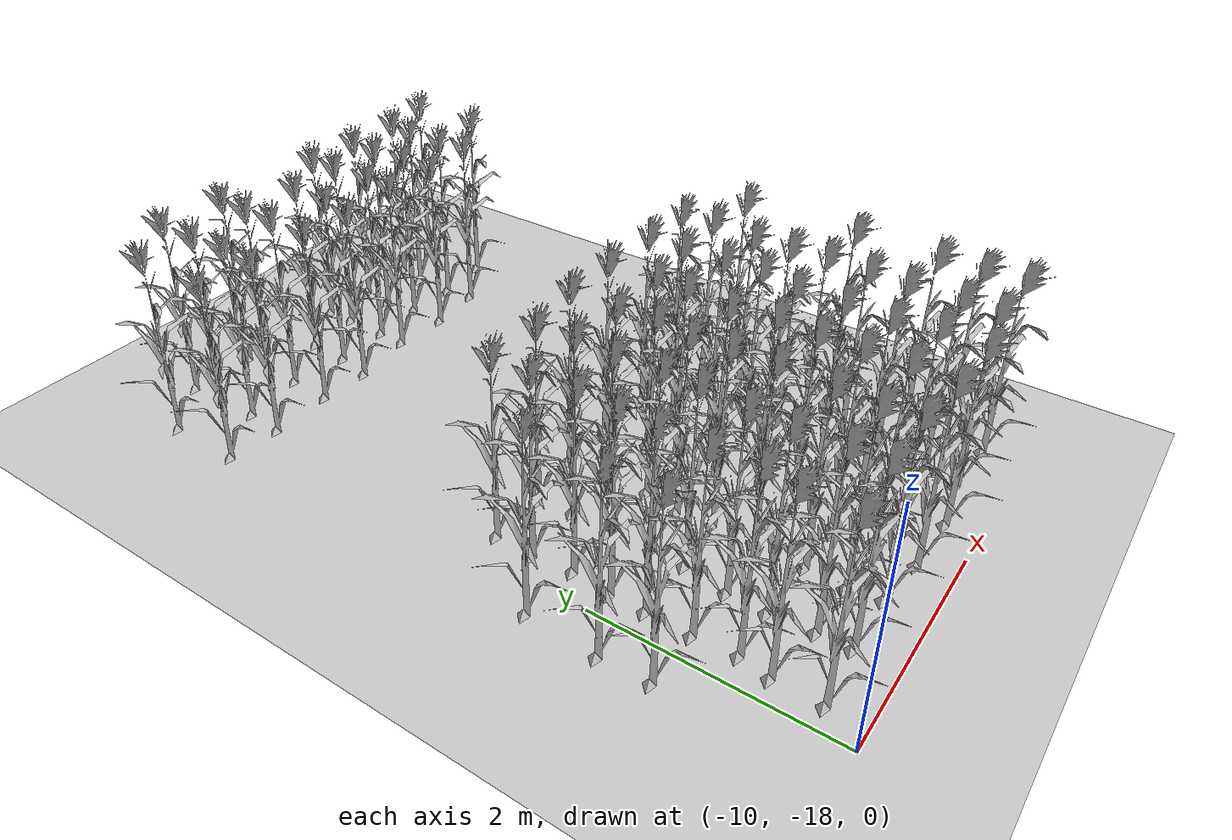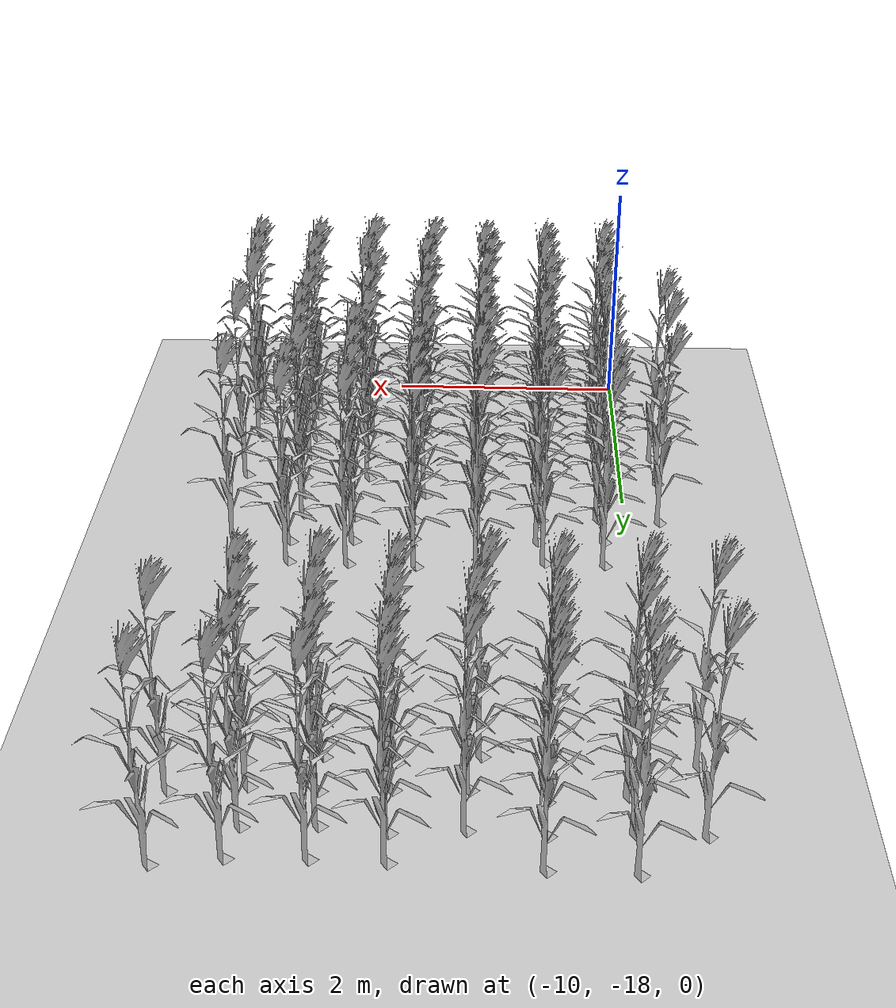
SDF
<sdf version="1.7">
 <world name="farmland_world">
  <model name="ground_plane">
   <static>1</static>
   <link name="link">
    <collision name="collision">
     <geometry><plane><normal>0 0 1</normal><size>40.0 40.0</size></plane></geometry>
     <surface><friction><ode><mu>100</mu><mu2>50</mu2></ode></friction></surface>
    </collision>
    <visual name="visual">
     <cast_shadows>0</cast_shadows>
     <geometry><plane><normal>0 0 1</normal><size>40.0 40.0</size></plane></geometry>
     <material>
      <script><uri>file://media/materials/scripts/gazebo.material</uri><name>Gazebo/Grey</name></script>
     </material>
    </visual>
   </link>
  </model>
  <model name="tree_3_1618">
   <static>1</static>
   <link name="link">
    <collision name="collision">
     <geometry><mesh><uri>model://Corn_low_poly/corn.obj</uri><scale>1 1 1</scale></mesh></geometry>
     <surface><friction><ode><mu>100</mu><mu2>50</mu2></ode></friction></surface>
    </collision>
    <visual name="visual">
     <geometry><mesh><uri>model://Corn_low_poly/corn.obj</uri><scale>1 1 1</scale></mesh></geometry>
    </visual>
   </link>
   <pose>-6.724378462520423 -17.002382384532176 0 0 0 0</pose>
  </model>
  <model name="tree_3_1619">
   <static>1</static>
   <link name="link">
    <collision name="collision">
     <geometry><mesh><uri>model://Corn_low_poly/corn.obj</uri><scale>1 1 1</scale></mesh></geometry>
     <surface><friction><ode><mu>100</mu><mu2>50</mu2></ode></friction></surface>
    </collision>
    <visual name="visual">
     <geometry><mesh><uri>model://Corn_low_poly/corn.obj</uri><scale>1 1 1</scale></mesh></geometry>
    </visual>
   </link>
   <pose>-7.245386113276124 -16.95539571434448 0 0 0 0</pose>
  </model>
  <model name="tree_3_1620">
   <static>1</static>
   <link name="link">
    <collision name="collision">
     <geometry><mesh><uri>model://Corn_low_poly/corn.obj</uri><scale>1 1 1</scale></mesh></geometry>
     <surface><friction><ode><mu>100</mu><mu2>50</mu2></ode></friction></surface>
    </collision>
    <visual name="visual">
     <geometry><mesh><uri>model://Corn_low_poly/corn.obj</uri><scale>1 1 1</scale></mesh></geometry>
    </visual>
   </link>
   <pose>-7.770082953325201 -17.04536111132922 0 0 0 0</pose>
  </model>
  <model name="tree_3_1621">
   <static>1</static>
   <link name="link">
    <collision name="collision">
     <geometry><mesh><uri>model://Corn_low_poly/corn.obj</uri><scale>1 1 1</scale></mesh></geometry>
     <surface><friction><ode><mu>100</mu><mu2>50</mu2></ode></friction></surface>
    </collision>
    <visual name="visual">
     <geometry><mesh><uri>model://Corn_low_poly/corn.obj</uri><scale>1 1 1</scale></mesh></geometry>
    </visual>
   </link>
   <pose>-8.240718700701235 -17.028666195019422 0 0 0 0</pose>
  </model>
  <model name="tree_3_1622">
   <static>1</static>
   <link name="link">
    <collision name="collision">
     <geometry><mesh><uri>model://Corn_low_poly/corn.obj</uri><scale>1 1 1</scale></mesh></geometry>
     <surface><friction><ode><mu>100</mu><mu2>50</mu2></ode></friction></surface>
    </collision>
    <visual name="visual">
     <geometry><mesh><uri>model://Corn_low_poly/corn.obj</uri><scale>1 1 1</scale></mesh></geometry>
    </visual>
   </link>
   <pose>-8.747114153866809 -17.045993525602928 0 0 0 0</pose>
  </model>
  <model name="tree_3_1623">
   <static>1</static>
   <link name="link">
    <collision name="collision">
     <geometry><mesh><uri>model://Corn_low_poly/corn.obj</uri><scale>1 1 1</scale></mesh></geometry>
     <surface><friction><ode><mu>100</mu><mu2>50</mu2></ode></friction></surface>
    </collision>
    <visual name="visual">
     <geometry><mesh><uri>model://Corn_low_poly/corn.obj</uri><scale>1 1 1</scale></mesh></geometry>
    </visual>
   </link>
   <pose>-9.304067438409486 -17.022650232296026 0 0 0 0</pose>
  </model>
  <model name="tree_3_1624">
   <static>1</static>
   <link name="link">
    <collision name="collision">
     <geometry><mesh><uri>model://Corn_low_poly/corn.obj</uri><scale>1 1 1</scale></mesh></geometry>
     <surface><friction><ode><mu>100</mu><mu2>50</mu2></ode></friction></surface>
    </collision>
    <visual name="visual">
     <geometry><mesh><uri>model://Corn_low_poly/corn.obj</uri><scale>1 1 1</scale></mesh></geometry>
    </visual>
   </link>
   <pose>-9.744941497329135 -17.045296760980715 0 0 0 0</pose>
  </model>
  <model name="tree_3_1652">
   <static>1</static>
   <link name="link">
    <collision name="collision">
     <geometry><mesh><uri>model://Corn_low_poly/corn.obj</uri><scale>1 1 1</scale></mesh></geometry>
     <surface><friction><ode><mu>100</mu><mu2>50</mu2></ode></friction></surface>
    </collision>
    <visual name="visual">
     <geometry><mesh><uri>model://Corn_low_poly/corn.obj</uri><scale>1 1 1</scale></mesh></geometry>
    </visual>
   </link>
   <pose>-6.7134934867978036 -17.345716254519786 0 0 0 0</pose>
  </model>
  <model name="tree_3_1653">
   <static>1</static>
   <link name="link">
    <collision name="collision">
     <geometry><mesh><uri>model://Corn_low_poly/corn.obj</uri><scale>1 1 1</scale></mesh></geometry>
     <surface><friction><ode><mu>100</mu><mu2>50</mu2></ode></friction></surface>
    </collision>
    <visual name="visual">
     <geometry><mesh><uri>model://Corn_low_poly/corn.obj</uri><scale>1 1 1</scale></mesh></geometry>
    </visual>
   </link>
   <pose>-7.224994439275808 -17.35783890887812 0 0 0 0</pose>
  </model>
  <model name="tree_3_1654">
   <static>1</static>
   <link name="link">
    <collision name="collision">
     <geometry><mesh><uri>model://Corn_low_poly/corn.obj</uri><scale>1 1 1</scale></mesh></geometry>
     <surface><friction><ode><mu>100</mu><mu2>50</mu2></ode></friction></surface>
    </collision>
    <visual name="visual">
     <geometry><mesh><uri>model://Corn_low_poly/corn.obj</uri><scale>1 1 1</scale></mesh></geometry>
    </visual>
   </link>
   <pose>-7.677826011850804 -17.364923700449058 0 0 0 0</pose>
  </model>
  <model name="tree_3_1655">
   <static>1</static>
   <link name="link">
    <collision name="collision">
     <geometry><mesh><uri>model://Corn_low_poly/corn.obj</uri><scale>1 1 1</scale></mesh></geometry>
     <surface><friction><ode><mu>100</mu><mu2>50</mu2></ode></friction></surface>
    </collision>
    <visual name="visual">
     <geometry><mesh><uri>model://Corn_low_poly/corn.obj</uri><scale>1 1 1</scale></mesh></geometry>
    </visual>
   </link>
   <pose>-8.210922723308746 -17.35628731072423 0 0 0 0</pose>
  </model>
  <model name="tree_3_1656">
   <static>1</static>
   <link name="link">
    <collision name="collision">
     <geometry><mesh><uri>model://Corn_low_poly/corn.obj</uri><scale>1 1 1</scale></mesh></geometry>
     <surface><friction><ode><mu>100</mu><mu2>50</mu2></ode></friction></surface>
    </collision>
    <visual name="visual">
     <geometry><mesh><uri>model://Corn_low_poly/corn.obj</uri><scale>1 1 1</scale></mesh></geometry>
    </visual>
   </link>
   <pose>-8.77586178812073 -17.37356178971155 0 0 0 0</pose>
  </model>
  <model name="tree_3_1657">
   <static>1</static>
   <link name="link">
    <collision name="collision">
     <geometry><mesh><uri>model://Corn_low_poly/corn.obj</uri><scale>1 1 1</scale></mesh></geometry>
     <surface><friction><ode><mu>100</mu><mu2>50</mu2></ode></friction></surface>
    </collision>
    <visual name="visual">
     <geometry><mesh><uri>model://Corn_low_poly/corn.obj</uri><scale>1 1 1</scale></mesh></geometry>
    </visual>
   </link>
   <pose>-9.26813171170715 -17.37701193942548 0 0 0 0</pose>
  </model>
  <model name="tree_3_1658">
   <static>1</static>
   <link name="link">
    <collision name="collision">
     <geometry><mesh><uri>model://Corn_low_poly/corn.obj</uri><scale>1 1 1</scale></mesh></geometry>
     <surface><friction><ode><mu>100</mu><mu2>50</mu2></ode></friction></surface>
    </collision>
    <visual name="visual">
     <geometry><mesh><uri>model://Corn_low_poly/corn.obj</uri><scale>1 1 1</scale></mesh></geometry>
    </visual>
   </link>
   <pose>-9.795754049860651 -17.298693136475023 0 0 0 0</pose>
  </model>
  <model name="tree_3_1686">
   <static>1</static>
   <link name="link">
    <collision name="collision">
     <geometry><mesh><uri>model://Corn_low_poly/corn.obj</uri><scale>1 1 1</scale></mesh></geometry>
     <surface><friction><ode><mu>100</mu><mu2>50</mu2></ode></friction></surface>
    </collision>
    <visual name="visual">
     <geometry><mesh><uri>model://Corn_low_poly/corn.obj</uri><scale>1 1 1</scale></mesh></geometry>
    </visual>
   </link>
   <pose>-6.695375724192943 -17.662829572374438 0 0 0 0</pose>
  </model>
  <model name="tree_3_1687">
   <static>1</static>
   <link name="link">
    <collision name="collision">
     <geometry><mesh><uri>model://Corn_low_poly/corn.obj</uri><scale>1 1 1</scale></mesh></geometry>
     <surface><friction><ode><mu>100</mu><mu2>50</mu2></ode></friction></surface>
    </collision>
    <visual name="visual">
     <geometry><mesh><uri>model://Corn_low_poly/corn.obj</uri><scale>1 1 1</scale></mesh></geometry>
    </visual>
   </link>
   <pose>-7.23356937751135 -17.634629675246327 0 0 0 0</pose>
  </model>
  <model name="tree_3_1688">
   <static>1</static>
   <link name="link">
    <collision name="collision">
     <geometry><mesh><uri>model://Corn_low_poly/corn.obj</uri><scale>1 1 1</scale></mesh></geometry>
     <surface><friction><ode><mu>100</mu><mu2>50</mu2></ode></friction></surface>
    </collision>
    <visual name="visual">
     <geometry><mesh><uri>model://Corn_low_poly/corn.obj</uri><scale>1 1 1</scale></mesh></geometry>
    </visual>
   </link>
   <pose>-7.727661490649814 -17.718559216665337 0 0 0 0</pose>
  </model>
  <model name="tree_3_1689">
   <static>1</static>
   <link name="link">
    <collision name="collision">
     <geometry><mesh><uri>model://Corn_low_poly/corn.obj</uri><scale>1 1 1</scale></mesh></geometry>
     <surface><friction><ode><mu>100</mu><mu2>50</mu2></ode></friction></surface>
    </collision>
    <visual name="visual">
     <geometry><mesh><uri>model://Corn_low_poly/corn.obj</uri><scale>1 1 1</scale></mesh></geometry>
    </visual>
   </link>
   <pose>-8.268839854869848 -17.69950430492615 0 0 0 0</pose>
  </model>
  <model name="tree_3_1690">
   <static>1</static>
   <link name="link">
    <collision name="collision">
     <geometry><mesh><uri>model://Corn_low_poly/corn.obj</uri><scale>1 1 1</scale></mesh></geometry>
     <surface><friction><ode><mu>100</mu><mu2>50</mu2></ode></friction></surface>
    </collision>
    <visual name="visual">
     <geometry><mesh><uri>model://Corn_low_poly/corn.obj</uri><scale>1 1 1</scale></mesh></geometry>
    </visual>
   </link>
   <pose>-8.725173494725249 -17.638144071178804 0 0 0 0</pose>
  </model>
  <model name="tree_3_1691">
   <static>1</static>
   <link name="link">
    <collision name="collision">
     <geometry><mesh><uri>model://Corn_low_poly/corn.obj</uri><scale>1 1 1</scale></mesh></geometry>
     <surface><friction><ode><mu>100</mu><mu2>50</mu2></ode></friction></surface>
    </collision>
    <visual name="visual">
     <geometry><mesh><uri>model://Corn_low_poly/corn.obj</uri><scale>1 1 1</scale></mesh></geometry>
    </visual>
   </link>
   <pose>-9.261247749691702 -17.640167385220682 0 0 0 0</pose>
  </model>
  <model name="tree_3_1692">
   <static>1</static>
   <link name="link">
    <collision name="collision">
     <geometry><mesh><uri>model://Corn_low_poly/corn.obj</uri><scale>1 1 1</scale></mesh></geometry>
     <surface><friction><ode><mu>100</mu><mu2>50</mu2></ode></friction></surface>
    </collision>
    <visual name="visual">
     <geometry><mesh><uri>model://Corn_low_poly/corn.obj</uri><scale>1 1 1</scale></mesh></geometry>
    </visual>
   </link>
   <pose>-9.793282053645529 -17.683458589661296 0 0 0 0</pose>
  </model>
  <model name="tree_3_1721">
   <static>1</static>
   <link name="link">
    <collision name="collision">
     <geometry><mesh><uri>model://Corn_low_poly/corn.obj</uri><scale>1 1 1</scale></mesh></geometry>
     <surface><friction><ode><mu>100</mu><mu2>50</mu2></ode></friction></surface>
    </collision>
    <visual name="visual">
     <geometry><mesh><uri>model://Corn_low_poly/corn.obj</uri><scale>1 1 1</scale></mesh></geometry>
    </visual>
   </link>
   <pose>-7.237927568504794 -15.998281990434059 0 0 0 0</pose>
  </model>
  <model name="tree_3_1722">
   <static>1</static>
   <link name="link">
    <collision name="collision">
     <geometry><mesh><uri>model://Corn_low_poly/corn.obj</uri><scale>1 1 1</scale></mesh></geometry>
     <surface><friction><ode><mu>100</mu><mu2>50</mu2></ode></friction></surface>
    </collision>
    <visual name="visual">
     <geometry><mesh><uri>model://Corn_low_poly/corn.obj</uri><scale>1 1 1</scale></mesh></geometry>
    </visual>
   </link>
   <pose>-7.67868755486954 -15.975051070359603 0 0 0 0</pose>
  </model>
  <model name="tree_3_1723">
   <static>1</static>
   <link name="link">
    <collision name="collision">
     <geometry><mesh><uri>model://Corn_low_poly/corn.obj</uri><scale>1 1 1</scale></mesh></geometry>
     <surface><friction><ode><mu>100</mu><mu2>50</mu2></ode></friction></surface>
    </collision>
    <visual name="visual">
     <geometry><mesh><uri>model://Corn_low_poly/corn.obj</uri><scale>1 1 1</scale></mesh></geometry>
    </visual>
   </link>
   <pose>-8.277878609978908 -16.024631916186536 0 0 0 0</pose>
  </model>
  <model name="tree_3_1724">
   <static>1</static>
   <link name="link">
    <collision name="collision">
     <geometry><mesh><uri>model://Corn_low_poly/corn.obj</uri><scale>1 1 1</scale></mesh></geometry>
     <surface><friction><ode><mu>100</mu><mu2>50</mu2></ode></friction></surface>
    </collision>
    <visual name="visual">
     <geometry><mesh><uri>model://Corn_low_poly/corn.obj</uri><scale>1 1 1</scale></mesh></geometry>
    </visual>
   </link>
   <pose>-8.776316053193392 -15.98422363182476 0 0 0 0</pose>
  </model>
  <model name="tree_3_1725">
   <static>1</static>
   <link name="link">
    <collision name="collision">
     <geometry><mesh><uri>model://Corn_low_poly/corn.obj</uri><scale>1 1 1</scale></mesh></geometry>
     <surface><friction><ode><mu>100</mu><mu2>50</mu2></ode></friction></surface>
    </collision>
    <visual name="visual">
     <geometry><mesh><uri>model://Corn_low_poly/corn.obj</uri><scale>1 1 1</scale></mesh></geometry>
    </visual>
   </link>
   <pose>-9.236186524209621 -16.04116756070843 0 0 0 0</pose>
  </model>
  <model name="tree_3_1726">
   <static>1</static>
   <link name="link">
    <collision name="collision">
     <geometry><mesh><uri>model://Corn_low_poly/corn.obj</uri><scale>1 1 1</scale></mesh></geometry>
     <surface><friction><ode><mu>100</mu><mu2>50</mu2></ode></friction></surface>
    </collision>
    <visual name="visual">
     <geometry><mesh><uri>model://Corn_low_poly/corn.obj</uri><scale>1 1 1</scale></mesh></geometry>
    </visual>
   </link>
   <pose>-9.775078346867788 -16.03865706884188 0 0 0 0</pose>
  </model>
  <model name="tree_3_1754">
   <static>1</static>
   <link name="link">
    <collision name="collision">
     <geometry><mesh><uri>model://Corn_low_poly/corn.obj</uri><scale>1 1 1</scale></mesh></geometry>
     <surface><friction><ode><mu>100</mu><mu2>50</mu2></ode></friction></surface>
    </collision>
    <visual name="visual">
     <geometry><mesh><uri>model://Corn_low_poly/corn.obj</uri><scale>1 1 1</scale></mesh></geometry>
    </visual>
   </link>
   <pose>-6.6935213395160895 -16.311092517961317 0 0 0 0</pose>
  </model>
  <model name="tree_3_1755">
   <static>1</static>
   <link name="link">
    <collision name="collision">
     <geometry><mesh><uri>model://Corn_low_poly/corn.obj</uri><scale>1 1 1</scale></mesh></geometry>
     <surface><friction><ode><mu>100</mu><mu2>50</mu2></ode></friction></surface>
    </collision>
    <visual name="visual">
     <geometry><mesh><uri>model://Corn_low_poly/corn.obj</uri><scale>1 1 1</scale></mesh></geometry>
    </visual>
   </link>
   <pose>-7.209053118939424 -16.29556840817922 0 0 0 0</pose>
  </model>
  <model name="tree_3_1756">
   <static>1</static>
   <link name="link">
    <collision name="collision">
     <geometry><mesh><uri>model://Corn_low_poly/corn.obj</uri><scale>1 1 1</scale></mesh></geometry>
     <surface><friction><ode><mu>100</mu><mu2>50</mu2></ode></friction></surface>
    </collision>
    <visual name="visual">
     <geometry><mesh><uri>model://Corn_low_poly/corn.obj</uri><scale>1 1 1</scale></mesh></geometry>
    </visual>
   </link>
   <pose>-7.77129686442884 -16.29506989280041 0 0 0 0</pose>
  </model>
  <model name="tree_3_1757">
   <static>1</static>
   <link name="link">
    <collision name="collision">
     <geometry><mesh><uri>model://Corn_low_poly/corn.obj</uri><scale>1 1 1</scale></mesh></geometry>
     <surface><friction><ode><mu>100</mu><mu2>50</mu2></ode></friction></surface>
    </collision>
    <visual name="visual">
     <geometry><mesh><uri>model://Corn_low_poly/corn.obj</uri><scale>1 1 1</scale></mesh></geometry>
    </visual>
   </link>
   <pose>-8.196198902050812 -16.36309616201652 0 0 0 0</pose>
  </model>
  <model name="tree_3_1758">
   <static>1</static>
   <link name="link">
    <collision name="collision">
     <geometry><mesh><uri>model://Corn_low_poly/corn.obj</uri><scale>1 1 1</scale></mesh></geometry>
     <surface><friction><ode><mu>100</mu><mu2>50</mu2></ode></friction></surface>
    </collision>
    <visual name="visual">
     <geometry><mesh><uri>model://Corn_low_poly/corn.obj</uri><scale>1 1 1</scale></mesh></geometry>
    </visual>
   </link>
   <pose>-8.738370091553222 -16.281251938681752 0 0 0 0</pose>
  </model>
  <model name="tree_3_1759">
   <static>1</static>
   <link name="link">
    <collision name="collision">
     <geometry><mesh><uri>model://Corn_low_poly/corn.obj</uri><scale>1 1 1</scale></mesh></geometry>
     <surface><friction><ode><mu>100</mu><mu2>50</mu2></ode></friction></surface>
    </collision>
    <visual name="visual">
     <geometry><mesh><uri>model://Corn_low_poly/corn.obj</uri><scale>1 1 1</scale></mesh></geometry>
    </visual>
   </link>
   <pose>-9.235710397265317 -16.32782406890687 0 0 0 0</pose>
  </model>
  <model name="tree_3_1760">
   <static>1</static>
   <link name="link">
    <collision name="collision">
     <geometry><mesh><uri>model://Corn_low_poly/corn.obj</uri><scale>1 1 1</scale></mesh></geometry>
     <surface><friction><ode><mu>100</mu><mu2>50</mu2></ode></friction></surface>
    </collision>
    <visual name="visual">
     <geometry><mesh><uri>model://Corn_low_poly/corn.obj</uri><scale>1 1 1</scale></mesh></geometry>
    </visual>
   </link>
   <pose>-9.77431314167697 -16.330138589626404 0 0 0 0</pose>
  </model>
  <model name="tree_3_1761">
   <static>1</static>
   <link name="link">
    <collision name="collision">
     <geometry><mesh><uri>model://Corn_low_poly/corn.obj</uri><scale>1 1 1</scale></mesh></geometry>
     <surface><friction><ode><mu>100</mu><mu2>50</mu2></ode></friction></surface>
    </collision>
    <visual name="visual">
     <geometry><mesh><uri>model://Corn_low_poly/corn.obj</uri><scale>1 1 1</scale></mesh></geometry>
    </visual>
   </link>
   <pose>-10.292537178859297 -16.28228152423903 0 0 0 0</pose>
  </model>
  <model name="tree_3_1789">
   <static>1</static>
   <link name="link">
    <collision name="collision">
     <geometry><mesh><uri>model://Corn_low_poly/corn.obj</uri><scale>1 1 1</scale></mesh></geometry>
     <surface><friction><ode><mu>100</mu><mu2>50</mu2></ode></friction></surface>
    </collision>
    <visual name="visual">
     <geometry><mesh><uri>model://Corn_low_poly/corn.obj</uri><scale>1 1 1</scale></mesh></geometry>
    </visual>
   </link>
   <pose>-7.22877348781728 -16.641132838005927 0 0 0 0</pose>
  </model>
  <model name="tree_3_1790">
   <static>1</static>
   <link name="link">
    <collision name="collision">
     <geometry><mesh><uri>model://Corn_low_poly/corn.obj</uri><scale>1 1 1</scale></mesh></geometry>
     <surface><friction><ode><mu>100</mu><mu2>50</mu2></ode></friction></surface>
    </collision>
    <visual name="visual">
     <geometry><mesh><uri>model://Corn_low_poly/corn.obj</uri><scale>1 1 1</scale></mesh></geometry>
    </visual>
   </link>
   <pose>-7.749337725070053 -16.678009963800513 0 0 0 0</pose>
  </model>
  <model name="tree_3_1791">
   <static>1</static>
   <link name="link">
    <collision name="collision">
     <geometry><mesh><uri>model://Corn_low_poly/corn.obj</uri><scale>1 1 1</scale></mesh></geometry>
     <surface><friction><ode><mu>100</mu><mu2>50</mu2></ode></friction></surface>
    </collision>
    <visual name="visual">
     <geometry><mesh><uri>model://Corn_low_poly/corn.obj</uri><scale>1 1 1</scale></mesh></geometry>
    </visual>
   </link>
   <pose>-8.242026621051624 -16.699933662209048 0 0 0 0</pose>
  </model>
  <model name="tree_3_1792">
   <static>1</static>
   <link name="link">
    <collision name="collision">
     <geometry><mesh><uri>model://Corn_low_poly/corn.obj</uri><scale>1 1 1</scale></mesh></geometry>
     <surface><friction><ode><mu>100</mu><mu2>50</mu2></ode></friction></surface>
    </collision>
    <visual name="visual">
     <geometry><mesh><uri>model://Corn_low_poly/corn.obj</uri><scale>1 1 1</scale></mesh></geometry>
    </visual>
   </link>
   <pose>-8.729749239469568 -16.62488476221891 0 0 0 0</pose>
  </model>
  <model name="tree_3_1793">
   <static>1</static>
   <link name="link">
    <collision name="collision">
     <geometry><mesh><uri>model://Corn_low_poly/corn.obj</uri><scale>1 1 1</scale></mesh></geometry>
     <surface><friction><ode><mu>100</mu><mu2>50</mu2></ode></friction></surface>
    </collision>
    <visual name="visual">
     <geometry><mesh><uri>model://Corn_low_poly/corn.obj</uri><scale>1 1 1</scale></mesh></geometry>
    </visual>
   </link>
   <pose>-9.295816603011469 -16.702106414566902 0 0 0 0</pose>
  </model>
  <model name="tree_3_1794">
   <static>1</static>
   <link name="link">
    <collision name="collision">
     <geometry><mesh><uri>model://Corn_low_poly/corn.obj</uri><scale>1 1 1</scale></mesh></geometry>
     <surface><friction><ode><mu>100</mu><mu2>50</mu2></ode></friction></surface>
    </collision>
    <visual name="visual">
     <geometry><mesh><uri>model://Corn_low_poly/corn.obj</uri><scale>1 1 1</scale></mesh></geometry>
    </visual>
   </link>
   <pose>-9.77463929401693 -16.701859745070276 0 0 0 0</pose>
  </model>
  <model name="tree_3_1795">
   <static>1</static>
   <link name="link">
    <collision name="collision">
     <geometry><mesh><uri>model://Corn_low_poly/corn.obj</uri><scale>1 1 1</scale></mesh></geometry>
     <surface><friction><ode><mu>100</mu><mu2>50</mu2></ode></friction></surface>
    </collision>
    <visual name="visual">
     <geometry><mesh><uri>model://Corn_low_poly/corn.obj</uri><scale>1 1 1</scale></mesh></geometry>
    </visual>
   </link>
   <pose>-10.269791535851159 -16.69119840249348 0 0 0 0</pose>
  </model>
  <model name="tree_3_1823">
   <static>1</static>
   <link name="link">
    <collision name="collision">
     <geometry><mesh><uri>model://Corn_low_poly/corn.obj</uri><scale>1 1 1</scale></mesh></geometry>
     <surface><friction><ode><mu>100</mu><mu2>50</mu2></ode></friction></surface>
    </collision>
    <visual name="visual">
     <geometry><mesh><uri>model://Corn_low_poly/corn.obj</uri><scale>1 1 1</scale></mesh></geometry>
    </visual>
   </link>
   <pose>-7.205247085508301 -14.996785943374848 0 0 0 0</pose>
  </model>
  <model name="tree_3_1824">
   <static>1</static>
   <link name="link">
    <collision name="collision">
     <geometry><mesh><uri>model://Corn_low_poly/corn.obj</uri><scale>1 1 1</scale></mesh></geometry>
     <surface><friction><ode><mu>100</mu><mu2>50</mu2></ode></friction></surface>
    </collision>
    <visual name="visual">
     <geometry><mesh><uri>model://Corn_low_poly/corn.obj</uri><scale>1 1 1</scale></mesh></geometry>
    </visual>
   </link>
   <pose>-7.692416130981386 -14.980542019798726 0 0 0 0</pose>
  </model>
  <model name="tree_3_1825">
   <static>1</static>
   <link name="link">
    <collision name="collision">
     <geometry><mesh><uri>model://Corn_low_poly/corn.obj</uri><scale>1 1 1</scale></mesh></geometry>
     <surface><friction><ode><mu>100</mu><mu2>50</mu2></ode></friction></surface>
    </collision>
    <visual name="visual">
     <geometry><mesh><uri>model://Corn_low_poly/corn.obj</uri><scale>1 1 1</scale></mesh></geometry>
    </visual>
   </link>
   <pose>-8.243281060078123 -14.959792610376539 0 0 0 0</pose>
  </model>
  <model name="tree_3_1826">
   <static>1</static>
   <link name="link">
    <collision name="collision">
     <geometry><mesh><uri>model://Corn_low_poly/corn.obj</uri><scale>1 1 1</scale></mesh></geometry>
     <surface><friction><ode><mu>100</mu><mu2>50</mu2></ode></friction></surface>
    </collision>
    <visual name="visual">
     <geometry><mesh><uri>model://Corn_low_poly/corn.obj</uri><scale>1 1 1</scale></mesh></geometry>
    </visual>
   </link>
   <pose>-8.744780501252514 -14.95355062112523 0 0 0 0</pose>
  </model>
  <model name="tree_3_1827">
   <static>1</static>
   <link name="link">
    <collision name="collision">
     <geometry><mesh><uri>model://Corn_low_poly/corn.obj</uri><scale>1 1 1</scale></mesh></geometry>
     <surface><friction><ode><mu>100</mu><mu2>50</mu2></ode></friction></surface>
    </collision>
    <visual name="visual">
     <geometry><mesh><uri>model://Corn_low_poly/corn.obj</uri><scale>1 1 1</scale></mesh></geometry>
    </visual>
   </link>
   <pose>-9.284884416323179 -15.0402154440241 0 0 0 0</pose>
  </model>
  <model name="tree_3_1828">
   <static>1</static>
   <link name="link">
    <collision name="collision">
     <geometry><mesh><uri>model://Corn_low_poly/corn.obj</uri><scale>1 1 1</scale></mesh></geometry>
     <surface><friction><ode><mu>100</mu><mu2>50</mu2></ode></friction></surface>
    </collision>
    <visual name="visual">
     <geometry><mesh><uri>model://Corn_low_poly/corn.obj</uri><scale>1 1 1</scale></mesh></geometry>
    </visual>
   </link>
   <pose>-9.770263650623315 -15.020808723046443 0 0 0 0</pose>
  </model>
  <model name="tree_3_1856">
   <static>1</static>
   <link name="link">
    <collision name="collision">
     <geometry><mesh><uri>model://Corn_low_poly/corn.obj</uri><scale>1 1 1</scale></mesh></geometry>
     <surface><friction><ode><mu>100</mu><mu2>50</mu2></ode></friction></surface>
    </collision>
    <visual name="visual">
     <geometry><mesh><uri>model://Corn_low_poly/corn.obj</uri><scale>1 1 1</scale></mesh></geometry>
    </visual>
   </link>
   <pose>-6.71728370315339 -15.332050350306414 0 0 0 0</pose>
  </model>
  <model name="tree_3_1857">
   <static>1</static>
   <link name="link">
    <collision name="collision">
     <geometry><mesh><uri>model://Corn_low_poly/corn.obj</uri><scale>1 1 1</scale></mesh></geometry>
     <surface><friction><ode><mu>100</mu><mu2>50</mu2></ode></friction></surface>
    </collision>
    <visual name="visual">
     <geometry><mesh><uri>model://Corn_low_poly/corn.obj</uri><scale>1 1 1</scale></mesh></geometry>
    </visual>
   </link>
   <pose>-7.189965683683097 -15.287281050234984 0 0 0 0</pose>
  </model>
  <model name="tree_3_1858">
   <static>1</static>
   <link name="link">
    <collision name="collision">
     <geometry><mesh><uri>model://Corn_low_poly/corn.obj</uri><scale>1 1 1</scale></mesh></geometry>
     <surface><friction><ode><mu>100</mu><mu2>50</mu2></ode></friction></surface>
    </collision>
    <visual name="visual">
     <geometry><mesh><uri>model://Corn_low_poly/corn.obj</uri><scale>1 1 1</scale></mesh></geometry>
    </visual>
   </link>
   <pose>-7.7138779542385505 -15.308341093094892 0 0 0 0</pose>
  </model>
  <model name="tree_3_1859">
   <static>1</static>
   <link name="link">
    <collision name="collision">
     <geometry><mesh><uri>model://Corn_low_poly/corn.obj</uri><scale>1 1 1</scale></mesh></geometry>
     <surface><friction><ode><mu>100</mu><mu2>50</mu2></ode></friction></surface>
    </collision>
    <visual name="visual">
     <geometry><mesh><uri>model://Corn_low_poly/corn.obj</uri><scale>1 1 1</scale></mesh></geometry>
    </visual>
   </link>
   <pose>-8.206697475893213 -15.35886794494368 0 0 0 0</pose>
  </model>
  <model name="tree_3_1860">
   <static>1</static>
   <link name="link">
    <collision name="collision">
     <geometry><mesh><uri>model://Corn_low_poly/corn.obj</uri><scale>1 1 1</scale></mesh></geometry>
     <surface><friction><ode><mu>100</mu><mu2>50</mu2></ode></friction></surface>
    </collision>
    <visual name="visual">
     <geometry><mesh><uri>model://Corn_low_poly/corn.obj</uri><scale>1 1 1</scale></mesh></geometry>
    </visual>
   </link>
   <pose>-8.758894791994525 -15.367338079047729 0 0 0 0</pose>
  </model>
  <model name="tree_3_1861">
   <static>1</static>
   <link name="link">
    <collision name="collision">
     <geometry><mesh><uri>model://Corn_low_poly/corn.obj</uri><scale>1 1 1</scale></mesh></geometry>
     <surface><friction><ode><mu>100</mu><mu2>50</mu2></ode></friction></surface>
    </collision>
    <visual name="visual">
     <geometry><mesh><uri>model://Corn_low_poly/corn.obj</uri><scale>1 1 1</scale></mesh></geometry>
    </visual>
   </link>
   <pose>-9.235934010670281 -15.336597844690406 0 0 0 0</pose>
  </model>
  <model name="tree_3_1862">
   <static>1</static>
   <link name="link">
    <collision name="collision">
     <geometry><mesh><uri>model://Corn_low_poly/corn.obj</uri><scale>1 1 1</scale></mesh></geometry>
     <surface><friction><ode><mu>100</mu><mu2>50</mu2></ode></friction></surface>
    </collision>
    <visual name="visual">
     <geometry><mesh><uri>model://Corn_low_poly/corn.obj</uri><scale>1 1 1</scale></mesh></geometry>
    </visual>
   </link>
   <pose>-9.782459350936627 -15.361485041660492 0 0 0 0</pose>
  </model>
  <model name="tree_3_1891">
   <static>1</static>
   <link name="link">
    <collision name="collision">
     <geometry><mesh><uri>model://Corn_low_poly/corn.obj</uri><scale>1 1 1</scale></mesh></geometry>
     <surface><friction><ode><mu>100</mu><mu2>50</mu2></ode></friction></surface>
    </collision>
    <visual name="visual">
     <geometry><mesh><uri>model://Corn_low_poly/corn.obj</uri><scale>1 1 1</scale></mesh></geometry>
    </visual>
   </link>
   <pose>-7.260888480333866 -15.68434481049889 0 0 0 0</pose>
  </model>
  <model name="tree_3_1892">
   <static>1</static>
   <link name="link">
    <collision name="collision">
     <geometry><mesh><uri>model://Corn_low_poly/corn.obj</uri><scale>1 1 1</scale></mesh></geometry>
     <surface><friction><ode><mu>100</mu><mu2>50</mu2></ode></friction></surface>
    </collision>
    <visual name="visual">
     <geometry><mesh><uri>model://Corn_low_poly/corn.obj</uri><scale>1 1 1</scale></mesh></geometry>
    </visual>
   </link>
   <pose>-7.6986867451350705 -15.65767105735169 0 0 0 0</pose>
  </model>
  <model name="tree_3_1893">
   <static>1</static>
   <link name="link">
    <collision name="collision">
     <geometry><mesh><uri>model://Corn_low_poly/corn.obj</uri><scale>1 1 1</scale></mesh></geometry>
     <surface><friction><ode><mu>100</mu><mu2>50</mu2></ode></friction></surface>
    </collision>
    <visual name="visual">
     <geometry><mesh><uri>model://Corn_low_poly/corn.obj</uri><scale>1 1 1</scale></mesh></geometry>
    </visual>
   </link>
   <pose>-8.212332763978175 -15.632165370640786 0 0 0 0</pose>
  </model>
  <model name="tree_3_1894">
   <static>1</static>
   <link name="link">
    <collision name="collision">
     <geometry><mesh><uri>model://Corn_low_poly/corn.obj</uri><scale>1 1 1</scale></mesh></geometry>
     <surface><friction><ode><mu>100</mu><mu2>50</mu2></ode></friction></surface>
    </collision>
    <visual name="visual">
     <geometry><mesh><uri>model://Corn_low_poly/corn.obj</uri><scale>1 1 1</scale></mesh></geometry>
    </visual>
   </link>
   <pose>-8.711298939731721 -15.675104868328157 0 0 0 0</pose>
  </model>
  <model name="tree_3_1895">
   <static>1</static>
   <link name="link">
    <collision name="collision">
     <geometry><mesh><uri>model://Corn_low_poly/corn.obj</uri><scale>1 1 1</scale></mesh></geometry>
     <surface><friction><ode><mu>100</mu><mu2>50</mu2></ode></friction></surface>
    </collision>
    <visual name="visual">
     <geometry><mesh><uri>model://Corn_low_poly/corn.obj</uri><scale>1 1 1</scale></mesh></geometry>
    </visual>
   </link>
   <pose>-9.268551766806052 -15.678153804116347 0 0 0 0</pose>
  </model>
  <model name="tree_3_1896">
   <static>1</static>
   <link name="link">
    <collision name="collision">
     <geometry><mesh><uri>model://Corn_low_poly/corn.obj</uri><scale>1 1 1</scale></mesh></geometry>
     <surface><friction><ode><mu>100</mu><mu2>50</mu2></ode></friction></surface>
    </collision>
    <visual name="visual">
     <geometry><mesh><uri>model://Corn_low_poly/corn.obj</uri><scale>1 1 1</scale></mesh></geometry>
    </visual>
   </link>
   <pose>-9.74522789275023 -15.701454747290692 0 0 0 0</pose>
  </model>
  <model name="tree_3_1897">
   <static>1</static>
   <link name="link">
    <collision name="collision">
     <geometry><mesh><uri>model://Corn_low_poly/corn.obj</uri><scale>1 1 1</scale></mesh></geometry>
     <surface><friction><ode><mu>100</mu><mu2>50</mu2></ode></friction></surface>
    </collision>
    <visual name="visual">
     <geometry><mesh><uri>model://Corn_low_poly/corn.obj</uri><scale>1 1 1</scale></mesh></geometry>
    </visual>
   </link>
   <pose>-10.262008370984612 -15.667128210018033 0 0 0 0</pose>
  </model>
  <model name="tree_3_1925">
   <static>1</static>
   <link name="link">
    <collision name="collision">
     <geometry><mesh><uri>model://Corn_low_poly/corn.obj</uri><scale>1 1 1</scale></mesh></geometry>
     <surface><friction><ode><mu>100</mu><mu2>50</mu2></ode></friction></surface>
    </collision>
    <visual name="visual">
     <geometry><mesh><uri>model://Corn_low_poly/corn.obj</uri><scale>1 1 1</scale></mesh></geometry>
    </visual>
   </link>
   <pose>-7.232304424465289 -11.983177029657606 0 0 0 0</pose>
  </model>
  <model name="tree_3_1926">
   <static>1</static>
   <link name="link">
    <collision name="collision">
     <geometry><mesh><uri>model://Corn_low_poly/corn.obj</uri><scale>1 1 1</scale></mesh></geometry>
     <surface><friction><ode><mu>100</mu><mu2>50</mu2></ode></friction></surface>
    </collision>
    <visual name="visual">
     <geometry><mesh><uri>model://Corn_low_poly/corn.obj</uri><scale>1 1 1</scale></mesh></geometry>
    </visual>
   </link>
   <pose>-7.74286402901029 -12.006611846523175 0 0 0 0</pose>
  </model>
  <model name="tree_3_1927">
   <static>1</static>
   <link name="link">
    <collision name="collision">
     <geometry><mesh><uri>model://Corn_low_poly/corn.obj</uri><scale>1 1 1</scale></mesh></geometry>
     <surface><friction><ode><mu>100</mu><mu2>50</mu2></ode></friction></surface>
    </collision>
    <visual name="visual">
     <geometry><mesh><uri>model://Corn_low_poly/corn.obj</uri><scale>1 1 1</scale></mesh></geometry>
    </visual>
   </link>
   <pose>-8.204434953859165 -11.959465314304444 0 0 0 0</pose>
  </model>
  <model name="tree_3_1928">
   <static>1</static>
   <link name="link">
    <collision name="collision">
     <geometry><mesh><uri>model://Corn_low_poly/corn.obj</uri><scale>1 1 1</scale></mesh></geometry>
     <surface><friction><ode><mu>100</mu><mu2>50</mu2></ode></friction></surface>
    </collision>
    <visual name="visual">
     <geometry><mesh><uri>model://Corn_low_poly/corn.obj</uri><scale>1 1 1</scale></mesh></geometry>
    </visual>
   </link>
   <pose>-8.71247061882324 -11.99656210983867 0 0 0 0</pose>
  </model>
  <model name="tree_3_1929">
   <static>1</static>
   <link name="link">
    <collision name="collision">
     <geometry><mesh><uri>model://Corn_low_poly/corn.obj</uri><scale>1 1 1</scale></mesh></geometry>
     <surface><friction><ode><mu>100</mu><mu2>50</mu2></ode></friction></surface>
    </collision>
    <visual name="visual">
     <geometry><mesh><uri>model://Corn_low_poly/corn.obj</uri><scale>1 1 1</scale></mesh></geometry>
    </visual>
   </link>
   <pose>-9.238996448929338 -11.967406908794997 0 0 0 0</pose>
  </model>
  <model name="tree_3_1930">
   <static>1</static>
   <link name="link">
    <collision name="collision">
     <geometry><mesh><uri>model://Corn_low_poly/corn.obj</uri><scale>1 1 1</scale></mesh></geometry>
     <surface><friction><ode><mu>100</mu><mu2>50</mu2></ode></friction></surface>
    </collision>
    <visual name="visual">
     <geometry><mesh><uri>model://Corn_low_poly/corn.obj</uri><scale>1 1 1</scale></mesh></geometry>
    </visual>
   </link>
   <pose>-9.811526143480368 -12.006311985620362 0 0 0 0</pose>
  </model>
  <model name="tree_3_1931">
   <static>1</static>
   <link name="link">
    <collision name="collision">
     <geometry><mesh><uri>model://Corn_low_poly/corn.obj</uri><scale>1 1 1</scale></mesh></geometry>
     <surface><friction><ode><mu>100</mu><mu2>50</mu2></ode></friction></surface>
    </collision>
    <visual name="visual">
     <geometry><mesh><uri>model://Corn_low_poly/corn.obj</uri><scale>1 1 1</scale></mesh></geometry>
    </visual>
   </link>
   <pose>-10.281962162144692 -11.997835788730049 0 0 0 0</pose>
  </model>
  <model name="tree_3_1958">
   <static>1</static>
   <link name="link">
    <collision name="collision">
     <geometry><mesh><uri>model://Corn_low_poly/corn.obj</uri><scale>1 1 1</scale></mesh></geometry>
     <surface><friction><ode><mu>100</mu><mu2>50</mu2></ode></friction></surface>
    </collision>
    <visual name="visual">
     <geometry><mesh><uri>model://Corn_low_poly/corn.obj</uri><scale>1 1 1</scale></mesh></geometry>
    </visual>
   </link>
   <pose>-6.699280664231802 -12.302504349420978 0 0 0 0</pose>
  </model>
  <model name="tree_3_1959">
   <static>1</static>
   <link name="link">
    <collision name="collision">
     <geometry><mesh><uri>model://Corn_low_poly/corn.obj</uri><scale>1 1 1</scale></mesh></geometry>
     <surface><friction><ode><mu>100</mu><mu2>50</mu2></ode></friction></surface>
    </collision>
    <visual name="visual">
     <geometry><mesh><uri>model://Corn_low_poly/corn.obj</uri><scale>1 1 1</scale></mesh></geometry>
    </visual>
   </link>
   <pose>-7.235304987751641 -12.359658604651035 0 0 0 0</pose>
  </model>
  <model name="tree_3_1960">
   <static>1</static>
   <link name="link">
    <collision name="collision">
     <geometry><mesh><uri>model://Corn_low_poly/corn.obj</uri><scale>1 1 1</scale></mesh></geometry>
     <surface><friction><ode><mu>100</mu><mu2>50</mu2></ode></friction></surface>
    </collision>
    <visual name="visual">
     <geometry><mesh><uri>model://Corn_low_poly/corn.obj</uri><scale>1 1 1</scale></mesh></geometry>
    </visual>
   </link>
   <pose>-7.711412515848248 -12.333931945728983 0 0 0 0</pose>
  </model>
  <model name="tree_3_1961">
   <static>1</static>
   <link name="link">
    <collision name="collision">
     <geometry><mesh><uri>model://Corn_low_poly/corn.obj</uri><scale>1 1 1</scale></mesh></geometry>
     <surface><friction><ode><mu>100</mu><mu2>50</mu2></ode></friction></surface>
    </collision>
    <visual name="visual">
     <geometry><mesh><uri>model://Corn_low_poly/corn.obj</uri><scale>1 1 1</scale></mesh></geometry>
    </visual>
   </link>
   <pose>-8.209182522689558 -12.36278780162841 0 0 0 0</pose>
  </model>
  <model name="tree_3_1962">
   <static>1</static>
   <link name="link">
    <collision name="collision">
     <geometry><mesh><uri>model://Corn_low_poly/corn.obj</uri><scale>1 1 1</scale></mesh></geometry>
     <surface><friction><ode><mu>100</mu><mu2>50</mu2></ode></friction></surface>
    </collision>
    <visual name="visual">
     <geometry><mesh><uri>model://Corn_low_poly/corn.obj</uri><scale>1 1 1</scale></mesh></geometry>
    </visual>
   </link>
   <pose>-8.727515109088655 -12.378180493894101 0 0 0 0</pose>
  </model>
  <model name="tree_3_1963">
   <static>1</static>
   <link name="link">
    <collision name="collision">
     <geometry><mesh><uri>model://Corn_low_poly/corn.obj</uri><scale>1 1 1</scale></mesh></geometry>
     <surface><friction><ode><mu>100</mu><mu2>50</mu2></ode></friction></surface>
    </collision>
    <visual name="visual">
     <geometry><mesh><uri>model://Corn_low_poly/corn.obj</uri><scale>1 1 1</scale></mesh></geometry>
    </visual>
   </link>
   <pose>-9.239375714361067 -12.283779571906129 0 0 0 0</pose>
  </model>
  <model name="tree_3_1964">
   <static>1</static>
   <link name="link">
    <collision name="collision">
     <geometry><mesh><uri>model://Corn_low_poly/corn.obj</uri><scale>1 1 1</scale></mesh></geometry>
     <surface><friction><ode><mu>100</mu><mu2>50</mu2></ode></friction></surface>
    </collision>
    <visual name="visual">
     <geometry><mesh><uri>model://Corn_low_poly/corn.obj</uri><scale>1 1 1</scale></mesh></geometry>
    </visual>
   </link>
   <pose>-9.791915361007197 -12.35317286454729 0 0 0 0</pose>
  </model>
  <model name="tree_3_1993">
   <static>1</static>
   <link name="link">
    <collision name="collision">
     <geometry><mesh><uri>model://Corn_low_poly/corn.obj</uri><scale>1 1 1</scale></mesh></geometry>
     <surface><friction><ode><mu>100</mu><mu2>50</mu2></ode></friction></surface>
    </collision>
    <visual name="visual">
     <geometry><mesh><uri>model://Corn_low_poly/corn.obj</uri><scale>1 1 1</scale></mesh></geometry>
    </visual>
   </link>
   <pose>-7.192272279591173 -12.621055722956884 0 0 0 0</pose>
  </model>
  <model name="tree_3_1994">
   <static>1</static>
   <link name="link">
    <collision name="collision">
     <geometry><mesh><uri>model://Corn_low_poly/corn.obj</uri><scale>1 1 1</scale></mesh></geometry>
     <surface><friction><ode><mu>100</mu><mu2>50</mu2></ode></friction></surface>
    </collision>
    <visual name="visual">
     <geometry><mesh><uri>model://Corn_low_poly/corn.obj</uri><scale>1 1 1</scale></mesh></geometry>
    </visual>
   </link>
   <pose>-7.715634093869286 -12.675357244871014 0 0 0 0</pose>
  </model>
  <model name="tree_3_1995">
   <static>1</static>
   <link name="link">
    <collision name="collision">
     <geometry><mesh><uri>model://Corn_low_poly/corn.obj</uri><scale>1 1 1</scale></mesh></geometry>
     <surface><friction><ode><mu>100</mu><mu2>50</mu2></ode></friction></surface>
    </collision>
    <visual name="visual">
     <geometry><mesh><uri>model://Corn_low_poly/corn.obj</uri><scale>1 1 1</scale></mesh></geometry>
    </visual>
   </link>
   <pose>-8.21838738262129 -12.634004786984425 0 0 0 0</pose>
  </model>
  <model name="tree_3_1996">
   <static>1</static>
   <link name="link">
    <collision name="collision">
     <geometry><mesh><uri>model://Corn_low_poly/corn.obj</uri><scale>1 1 1</scale></mesh></geometry>
     <surface><friction><ode><mu>100</mu><mu2>50</mu2></ode></friction></surface>
    </collision>
    <visual name="visual">
     <geometry><mesh><uri>model://Corn_low_poly/corn.obj</uri><scale>1 1 1</scale></mesh></geometry>
    </visual>
   </link>
   <pose>-8.801237232934279 -12.712675903142346 0 0 0 0</pose>
  </model>
  <model name="tree_3_1997">
   <static>1</static>
   <link name="link">
    <collision name="collision">
     <geometry><mesh><uri>model://Corn_low_poly/corn.obj</uri><scale>1 1 1</scale></mesh></geometry>
     <surface><friction><ode><mu>100</mu><mu2>50</mu2></ode></friction></surface>
    </collision>
    <visual name="visual">
     <geometry><mesh><uri>model://Corn_low_poly/corn.obj</uri><scale>1 1 1</scale></mesh></geometry>
    </visual>
   </link>
   <pose>-9.258886370888693 -12.685880144970852 0 0 0 0</pose>
  </model>
  <model name="tree_3_1998">
   <static>1</static>
   <link name="link">
    <collision name="collision">
     <geometry><mesh><uri>model://Corn_low_poly/corn.obj</uri><scale>1 1 1</scale></mesh></geometry>
     <surface><friction><ode><mu>100</mu><mu2>50</mu2></ode></friction></surface>
    </collision>
    <visual name="visual">
     <geometry><mesh><uri>model://Corn_low_poly/corn.obj</uri><scale>1 1 1</scale></mesh></geometry>
    </visual>
   </link>
   <pose>-9.822776664998315 -12.70073077366597 0 0 0 0</pose>
  </model>
  <model name="tree_3_1999">
   <static>1</static>
   <link name="link">
    <collision name="collision">
     <geometry><mesh><uri>model://Corn_low_poly/corn.obj</uri><scale>1 1 1</scale></mesh></geometry>
     <surface><friction><ode><mu>100</mu><mu2>50</mu2></ode></friction></surface>
    </collision>
    <visual name="visual">
     <geometry><mesh><uri>model://Corn_low_poly/corn.obj</uri><scale>1 1 1</scale></mesh></geometry>
    </visual>
   </link>
   <pose>-10.28759542072198 -12.664186700841364 0 0 0 0</pose>
  </model>
  <model name="tree_3_2094">
   <static>1</static>
   <link name="link">
    <collision name="collision">
     <geometry><mesh><uri>model://Corn_low_poly/corn.obj</uri><scale>1 1 1</scale></mesh></geometry>
     <surface><friction><ode><mu>100</mu><mu2>50</mu2></ode></friction></surface>
    </collision>
    <visual name="visual">
     <geometry><mesh><uri>model://Corn_low_poly/corn.obj</uri><scale>1 1 1</scale></mesh></geometry>
    </visual>
   </link>
   <pose>-6.695798015013241 -11.627445146069515 0 0 0 0</pose>
  </model>
  <model name="tree_3_2095">
   <static>1</static>
   <link name="link">
    <collision name="collision">
     <geometry><mesh><uri>model://Corn_low_poly/corn.obj</uri><scale>1 1 1</scale></mesh></geometry>
     <surface><friction><ode><mu>100</mu><mu2>50</mu2></ode></friction></surface>
    </collision>
    <visual name="visual">
     <geometry><mesh><uri>model://Corn_low_poly/corn.obj</uri><scale>1 1 1</scale></mesh></geometry>
    </visual>
   </link>
   <pose>-7.168493714946516 -11.697303092451465 0 0 0 0</pose>
  </model>
  <model name="tree_3_2096">
   <static>1</static>
   <link name="link">
    <collision name="collision">
     <geometry><mesh><uri>model://Corn_low_poly/corn.obj</uri><scale>1 1 1</scale></mesh></geometry>
     <surface><friction><ode><mu>100</mu><mu2>50</mu2></ode></friction></surface>
    </collision>
    <visual name="visual">
     <geometry><mesh><uri>model://Corn_low_poly/corn.obj</uri><scale>1 1 1</scale></mesh></geometry>
    </visual>
   </link>
   <pose>-7.709175696794599 -11.708344684789882 0 0 0 0</pose>
  </model>
  <model name="tree_3_2097">
   <static>1</static>
   <link name="link">
    <collision name="collision">
     <geometry><mesh><uri>model://Corn_low_poly/corn.obj</uri><scale>1 1 1</scale></mesh></geometry>
     <surface><friction><ode><mu>100</mu><mu2>50</mu2></ode></friction></surface>
    </collision>
    <visual name="visual">
     <geometry><mesh><uri>model://Corn_low_poly/corn.obj</uri><scale>1 1 1</scale></mesh></geometry>
    </visual>
   </link>
   <pose>-8.213962190930099 -11.693028995428039 0 0 0 0</pose>
  </model>
  <model name="tree_3_2099">
   <static>1</static>
   <link name="link">
    <collision name="collision">
     <geometry><mesh><uri>model://Corn_low_poly/corn.obj</uri><scale>1 1 1</scale></mesh></geometry>
     <surface><friction><ode><mu>100</mu><mu2>50</mu2></ode></friction></surface>
    </collision>
    <visual name="visual">
     <geometry><mesh><uri>model://Corn_low_poly/corn.obj</uri><scale>1 1 1</scale></mesh></geometry>
    </visual>
   </link>
   <pose>-9.224808785652552 -11.659363362156855 0 0 0 0</pose>
  </model>
  <model name="tree_3_2100">
   <static>1</static>
   <link name="link">
    <collision name="collision">
     <geometry><mesh><uri>model://Corn_low_poly/corn.obj</uri><scale>1 1 1</scale></mesh></geometry>
     <surface><friction><ode><mu>100</mu><mu2>50</mu2></ode></friction></surface>
    </collision>
    <visual name="visual">
     <geometry><mesh><uri>model://Corn_low_poly/corn.obj</uri><scale>1 1 1</scale></mesh></geometry>
    </visual>
   </link>
   <pose>-9.818713186139837 -11.644030378324688 0 0 0 0</pose>
  </model>
 </world>
</sdf>
